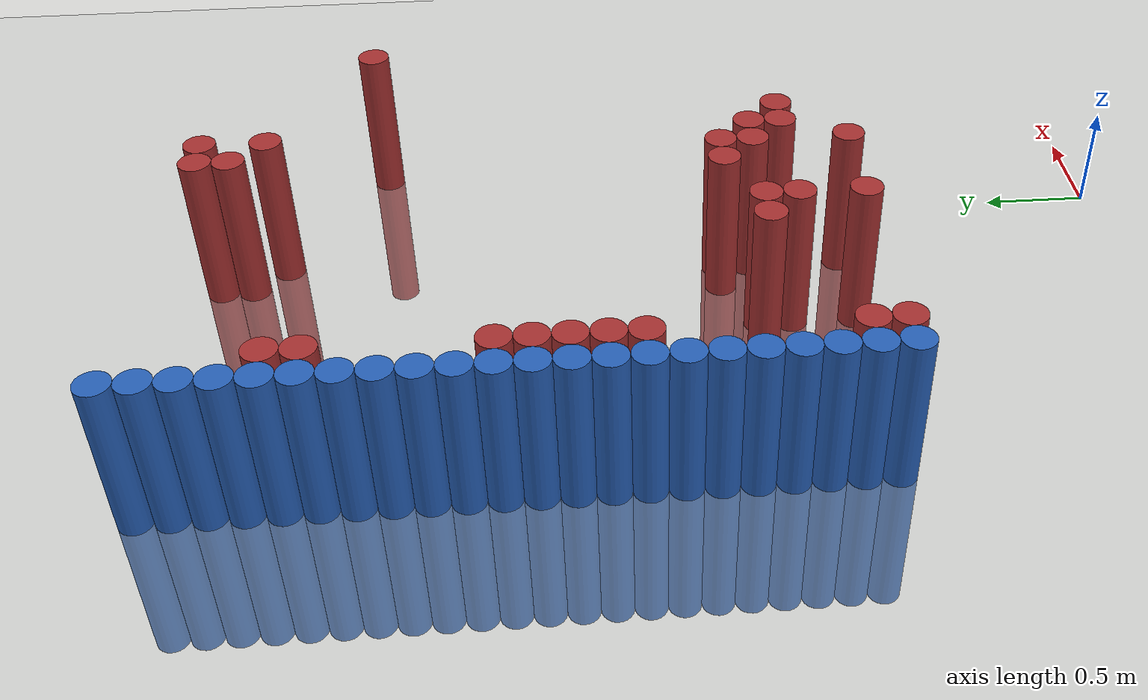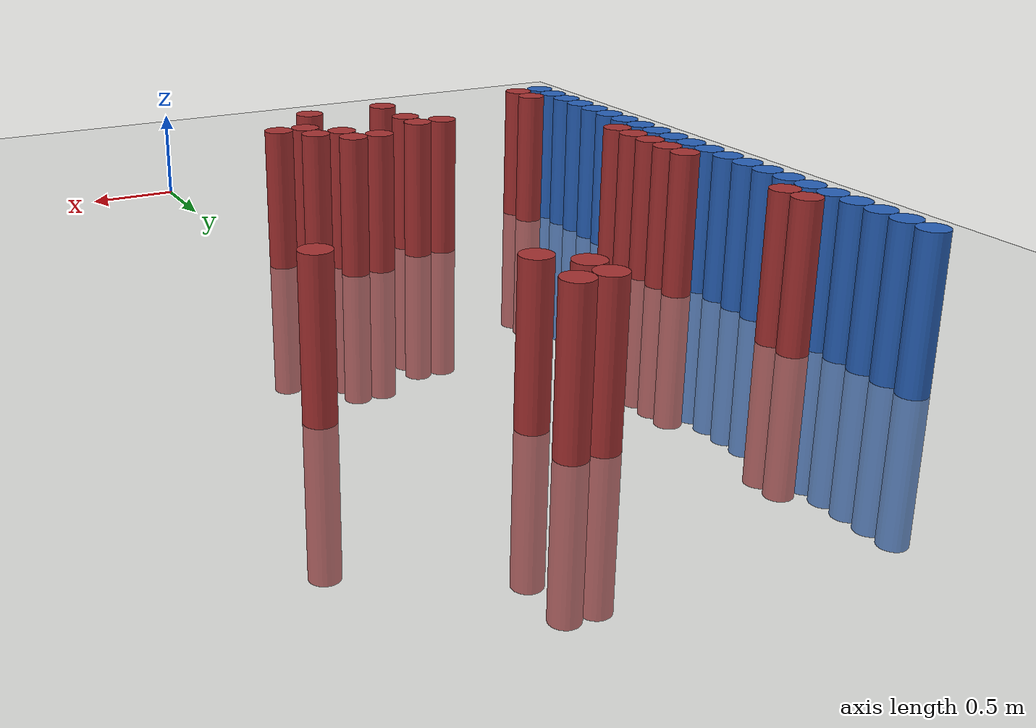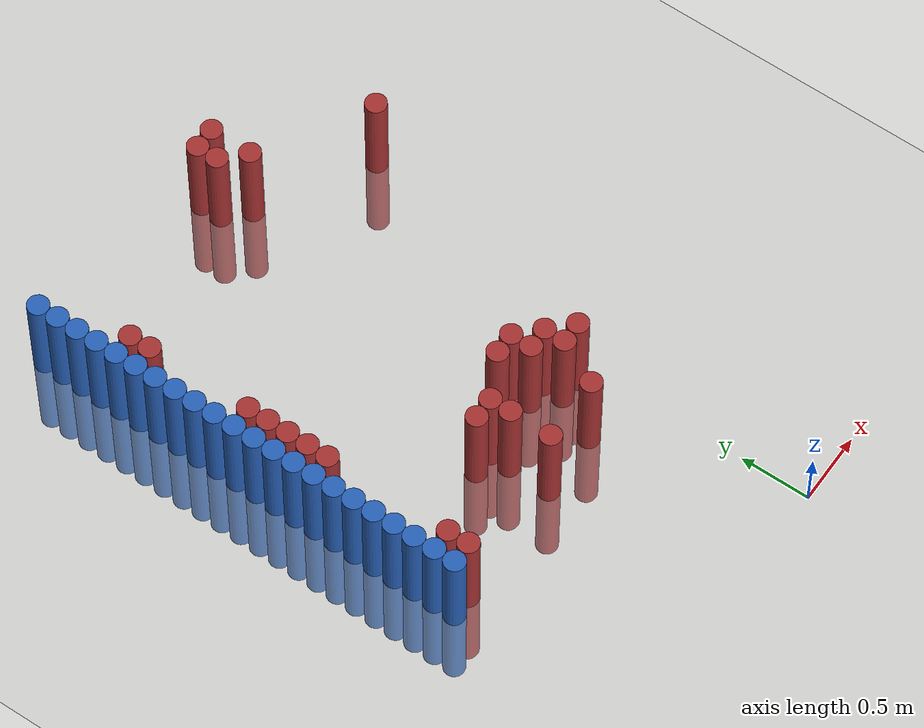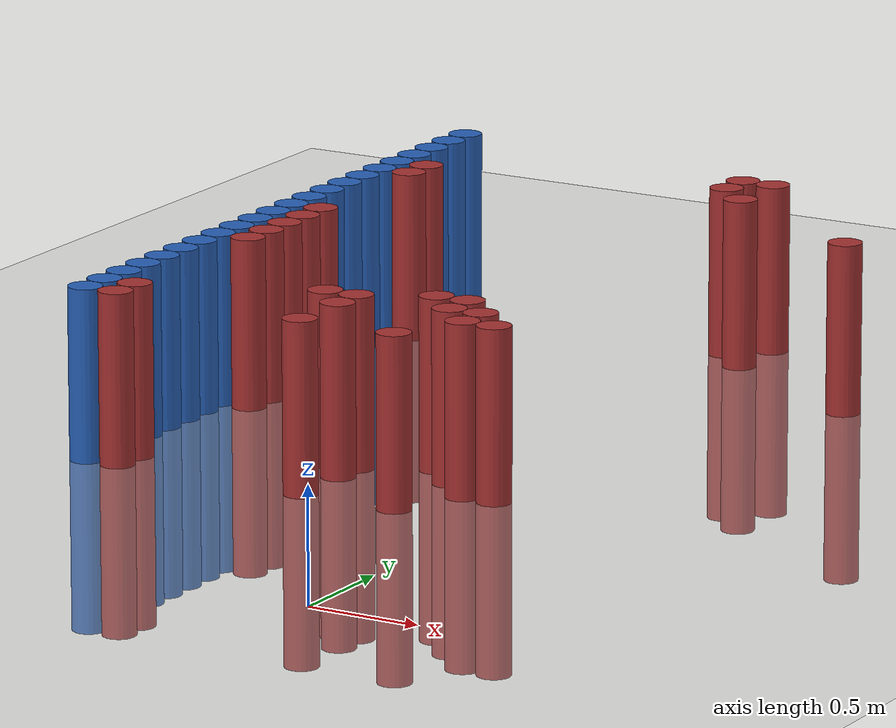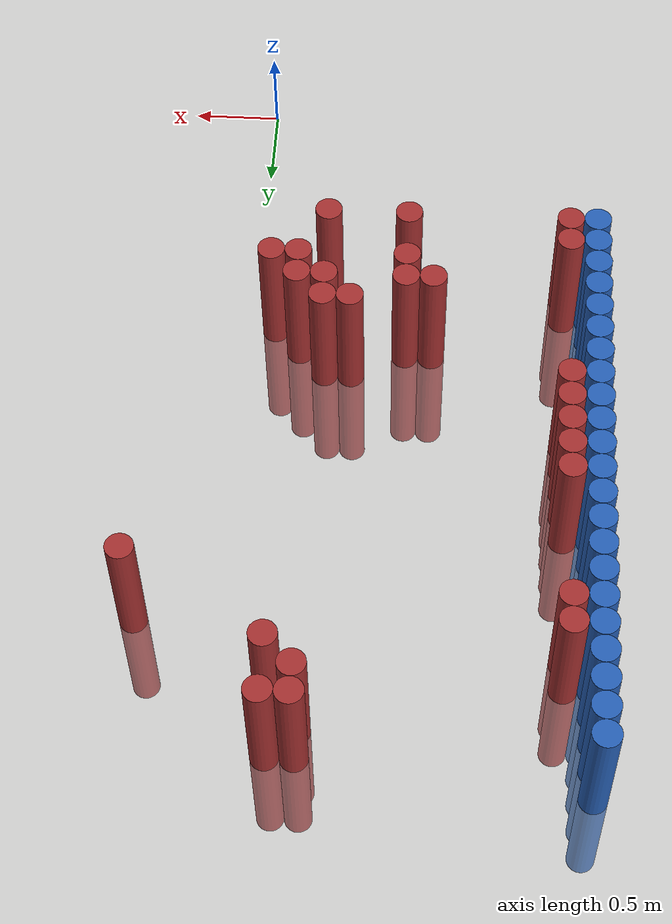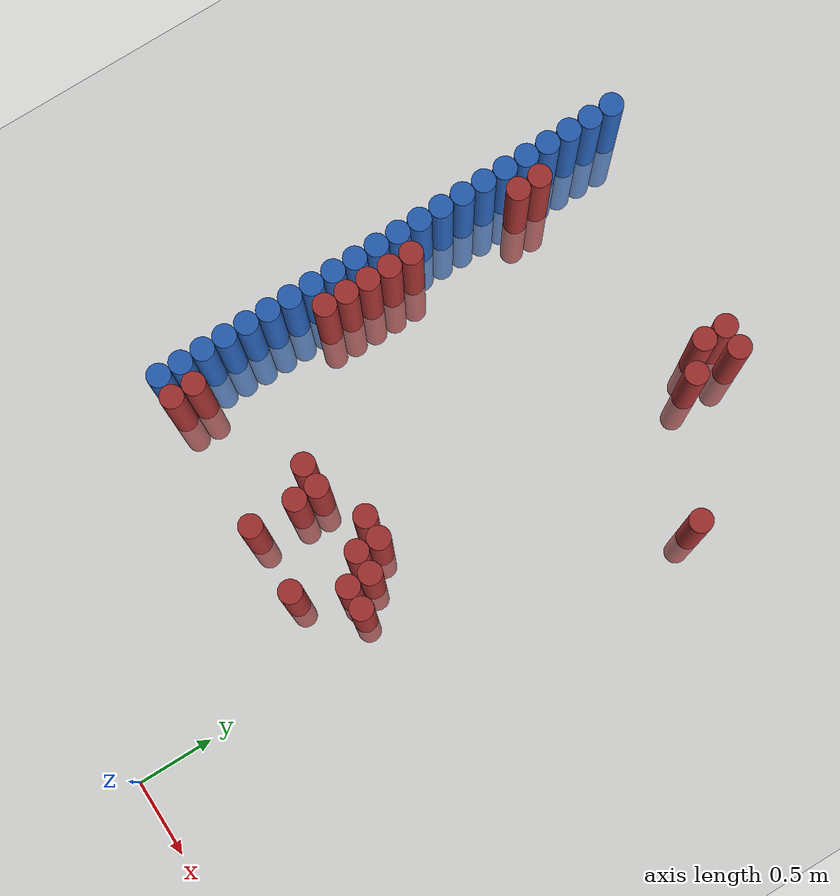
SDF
<sdf version="1.6">
 <world name="default">
  <model name="ground_plane">
   <static>1</static>
   <link name="link">
    <collision name="collision">
     <geometry><plane><normal>0 0 1</normal><size>100 100</size></plane></geometry>
     <surface><friction><ode><mu>100</mu><mu2>50</mu2></ode></friction></surface>
    </collision>
    <visual name="visual">
     <cast_shadows>0</cast_shadows>
     <geometry><plane><normal>0 0 1</normal><size>100 100</size></plane></geometry>
     <material>
      <script><uri>file://media/materials/scripts/gazebo.material</uri><name>Gazebo/Grey</name></script>
     </material>
    </visual>
   </link>
  </model>
  <model name="unit_cylinder_104">
   <static>1</static>
   <pose>-1.925000 1.375000 0.000000 0.000000 0.000000 0.000000</pose>
   <link name="link">
    <inertial>
     <mass>1</mass>
     <inertia><ixx>0.145833</ixx><ixy>0</ixy><ixz>0</ixz><iyy>0.145833</iyy><iyz>0</iyz><izz>0.125</izz></inertia>
    </inertial>
    <collision name="collision">
     <geometry><cylinder><radius>0.075000</radius><length>1.5</length></cylinder></geometry>
    </collision>
    <visual name="visual">
     <geometry><cylinder><radius>0.075000</radius><length>1.5</length></cylinder></geometry>
     <material>
      <ambient>0.152000 0.379000 0.720000 1</ambient>
      <diffuse>0.152000 0.379000 0.720000 1</diffuse>
     </material>
     <material>
      <script><name>Gazebo/Grey</name><uri>file://media/materials/scripts/gazebo.material</uri></script>
     </material>
    </visual>
   </link>
  </model>
  <model name="unit_cylinder_105">
   <static>1</static>
   <pose>-1.925000 1.525000 0.000000 0.000000 0.000000 0.000000</pose>
   <link name="link">
    <inertial>
     <mass>1</mass>
     <inertia><ixx>0.145833</ixx><ixy>0</ixy><ixz>0</ixz><iyy>0.145833</iyy><iyz>0</iyz><izz>0.125</izz></inertia>
    </inertial>
    <collision name="collision">
     <geometry><cylinder><radius>0.075000</radius><length>1.5</length></cylinder></geometry>
    </collision>
    <visual name="visual">
     <geometry><cylinder><radius>0.075000</radius><length>1.5</length></cylinder></geometry>
     <material>
      <ambient>0.152000 0.379000 0.720000 1</ambient>
      <diffuse>0.152000 0.379000 0.720000 1</diffuse>
     </material>
     <material>
      <script><name>Gazebo/Grey</name><uri>file://media/materials/scripts/gazebo.material</uri></script>
     </material>
    </visual>
   </link>
  </model>
  <model name="unit_cylinder_106">
   <static>1</static>
   <pose>-1.925000 1.675000 0.000000 0.000000 0.000000 0.000000</pose>
   <link name="link">
    <inertial>
     <mass>1</mass>
     <inertia><ixx>0.145833</ixx><ixy>0</ixy><ixz>0</ixz><iyy>0.145833</iyy><iyz>0</iyz><izz>0.125</izz></inertia>
    </inertial>
    <collision name="collision">
     <geometry><cylinder><radius>0.075000</radius><length>1.5</length></cylinder></geometry>
    </collision>
    <visual name="visual">
     <geometry><cylinder><radius>0.075000</radius><length>1.5</length></cylinder></geometry>
     <material>
      <ambient>0.152000 0.379000 0.720000 1</ambient>
      <diffuse>0.152000 0.379000 0.720000 1</diffuse>
     </material>
     <material>
      <script><name>Gazebo/Grey</name><uri>file://media/materials/scripts/gazebo.material</uri></script>
     </material>
    </visual>
   </link>
  </model>
  <model name="unit_cylinder_107">
   <static>1</static>
   <pose>-1.925000 1.825000 0.000000 0.000000 0.000000 0.000000</pose>
   <link name="link">
    <inertial>
     <mass>1</mass>
     <inertia><ixx>0.145833</ixx><ixy>0</ixy><ixz>0</ixz><iyy>0.145833</iyy><iyz>0</iyz><izz>0.125</izz></inertia>
    </inertial>
    <collision name="collision">
     <geometry><cylinder><radius>0.075000</radius><length>1.5</length></cylinder></geometry>
    </collision>
    <visual name="visual">
     <geometry><cylinder><radius>0.075000</radius><length>1.5</length></cylinder></geometry>
     <material>
      <ambient>0.152000 0.379000 0.720000 1</ambient>
      <diffuse>0.152000 0.379000 0.720000 1</diffuse>
     </material>
     <material>
      <script><name>Gazebo/Grey</name><uri>file://media/materials/scripts/gazebo.material</uri></script>
     </material>
    </visual>
   </link>
  </model>
  <model name="unit_cylinder_108">
   <static>1</static>
   <pose>-1.925000 1.975000 0.000000 0.000000 0.000000 0.000000</pose>
   <link name="link">
    <inertial>
     <mass>1</mass>
     <inertia><ixx>0.145833</ixx><ixy>0</ixy><ixz>0</ixz><iyy>0.145833</iyy><iyz>0</iyz><izz>0.125</izz></inertia>
    </inertial>
    <collision name="collision">
     <geometry><cylinder><radius>0.075000</radius><length>1.5</length></cylinder></geometry>
    </collision>
    <visual name="visual">
     <geometry><cylinder><radius>0.075000</radius><length>1.5</length></cylinder></geometry>
     <material>
      <ambient>0.152000 0.379000 0.720000 1</ambient>
      <diffuse>0.152000 0.379000 0.720000 1</diffuse>
     </material>
     <material>
      <script><name>Gazebo/Grey</name><uri>file://media/materials/scripts/gazebo.material</uri></script>
     </material>
    </visual>
   </link>
  </model>
  <model name="unit_cylinder_109">
   <static>1</static>
   <pose>-1.925000 2.125000 0.000000 0.000000 0.000000 0.000000</pose>
   <link name="link">
    <inertial>
     <mass>1</mass>
     <inertia><ixx>0.145833</ixx><ixy>0</ixy><ixz>0</ixz><iyy>0.145833</iyy><iyz>0</iyz><izz>0.125</izz></inertia>
    </inertial>
    <collision name="collision">
     <geometry><cylinder><radius>0.075000</radius><length>1.5</length></cylinder></geometry>
    </collision>
    <visual name="visual">
     <geometry><cylinder><radius>0.075000</radius><length>1.5</length></cylinder></geometry>
     <material>
      <ambient>0.152000 0.379000 0.720000 1</ambient>
      <diffuse>0.152000 0.379000 0.720000 1</diffuse>
     </material>
     <material>
      <script><name>Gazebo/Grey</name><uri>file://media/materials/scripts/gazebo.material</uri></script>
     </material>
    </visual>
   </link>
  </model>
  <model name="unit_cylinder_110">
   <static>1</static>
   <pose>-1.925000 2.275000 0.000000 0.000000 0.000000 0.000000</pose>
   <link name="link">
    <inertial>
     <mass>1</mass>
     <inertia><ixx>0.145833</ixx><ixy>0</ixy><ixz>0</ixz><iyy>0.145833</iyy><iyz>0</iyz><izz>0.125</izz></inertia>
    </inertial>
    <collision name="collision">
     <geometry><cylinder><radius>0.075000</radius><length>1.5</length></cylinder></geometry>
    </collision>
    <visual name="visual">
     <geometry><cylinder><radius>0.075000</radius><length>1.5</length></cylinder></geometry>
     <material>
      <ambient>0.152000 0.379000 0.720000 1</ambient>
      <diffuse>0.152000 0.379000 0.720000 1</diffuse>
     </material>
     <material>
      <script><name>Gazebo/Grey</name><uri>file://media/materials/scripts/gazebo.material</uri></script>
     </material>
    </visual>
   </link>
  </model>
  <model name="unit_cylinder_111">
   <static>1</static>
   <pose>-1.925000 2.425000 0.000000 0.000000 0.000000 0.000000</pose>
   <link name="link">
    <inertial>
     <mass>1</mass>
     <inertia><ixx>0.145833</ixx><ixy>0</ixy><ixz>0</ixz><iyy>0.145833</iyy><iyz>0</iyz><izz>0.125</izz></inertia>
    </inertial>
    <collision name="collision">
     <geometry><cylinder><radius>0.075000</radius><length>1.5</length></cylinder></geometry>
    </collision>
    <visual name="visual">
     <geometry><cylinder><radius>0.075000</radius><length>1.5</length></cylinder></geometry>
     <material>
      <ambient>0.152000 0.379000 0.720000 1</ambient>
      <diffuse>0.152000 0.379000 0.720000 1</diffuse>
     </material>
     <material>
      <script><name>Gazebo/Grey</name><uri>file://media/materials/scripts/gazebo.material</uri></script>
     </material>
    </visual>
   </link>
  </model>
  <model name="unit_cylinder_112">
   <static>1</static>
   <pose>-1.925000 2.575000 0.000000 0.000000 0.000000 0.000000</pose>
   <link name="link">
    <inertial>
     <mass>1</mass>
     <inertia><ixx>0.145833</ixx><ixy>0</ixy><ixz>0</ixz><iyy>0.145833</iyy><iyz>0</iyz><izz>0.125</izz></inertia>
    </inertial>
    <collision name="collision">
     <geometry><cylinder><radius>0.075000</radius><length>1.5</length></cylinder></geometry>
    </collision>
    <visual name="visual">
     <geometry><cylinder><radius>0.075000</radius><length>1.5</length></cylinder></geometry>
     <material>
      <ambient>0.152000 0.379000 0.720000 1</ambient>
      <diffuse>0.152000 0.379000 0.720000 1</diffuse>
     </material>
     <material>
      <script><name>Gazebo/Grey</name><uri>file://media/materials/scripts/gazebo.material</uri></script>
     </material>
    </visual>
   </link>
  </model>
  <model name="unit_cylinder_113">
   <static>1</static>
   <pose>-1.925000 2.725000 0.000000 0.000000 0.000000 0.000000</pose>
   <link name="link">
    <inertial>
     <mass>1</mass>
     <inertia><ixx>0.145833</ixx><ixy>0</ixy><ixz>0</ixz><iyy>0.145833</iyy><iyz>0</iyz><izz>0.125</izz></inertia>
    </inertial>
    <collision name="collision">
     <geometry><cylinder><radius>0.075000</radius><length>1.5</length></cylinder></geometry>
    </collision>
    <visual name="visual">
     <geometry><cylinder><radius>0.075000</radius><length>1.5</length></cylinder></geometry>
     <material>
      <ambient>0.152000 0.379000 0.720000 1</ambient>
      <diffuse>0.152000 0.379000 0.720000 1</diffuse>
     </material>
     <material>
      <script><name>Gazebo/Grey</name><uri>file://media/materials/scripts/gazebo.material</uri></script>
     </material>
    </visual>
   </link>
  </model>
  <model name="unit_cylinder_114">
   <static>1</static>
   <pose>-1.925000 2.875000 0.000000 0.000000 0.000000 0.000000</pose>
   <link name="link">
    <inertial>
     <mass>1</mass>
     <inertia><ixx>0.145833</ixx><ixy>0</ixy><ixz>0</ixz><iyy>0.145833</iyy><iyz>0</iyz><izz>0.125</izz></inertia>
    </inertial>
    <collision name="collision">
     <geometry><cylinder><radius>0.075000</radius><length>1.5</length></cylinder></geometry>
    </collision>
    <visual name="visual">
     <geometry><cylinder><radius>0.075000</radius><length>1.5</length></cylinder></geometry>
     <material>
      <ambient>0.152000 0.379000 0.720000 1</ambient>
      <diffuse>0.152000 0.379000 0.720000 1</diffuse>
     </material>
     <material>
      <script><name>Gazebo/Grey</name><uri>file://media/materials/scripts/gazebo.material</uri></script>
     </material>
    </visual>
   </link>
  </model>
  <model name="unit_cylinder_115">
   <static>1</static>
   <pose>-1.925000 3.025000 0.000000 0.000000 0.000000 0.000000</pose>
   <link name="link">
    <inertial>
     <mass>1</mass>
     <inertia><ixx>0.145833</ixx><ixy>0</ixy><ixz>0</ixz><iyy>0.145833</iyy><iyz>0</iyz><izz>0.125</izz></inertia>
    </inertial>
    <collision name="collision">
     <geometry><cylinder><radius>0.075000</radius><length>1.5</length></cylinder></geometry>
    </collision>
    <visual name="visual">
     <geometry><cylinder><radius>0.075000</radius><length>1.5</length></cylinder></geometry>
     <material>
      <ambient>0.152000 0.379000 0.720000 1</ambient>
      <diffuse>0.152000 0.379000 0.720000 1</diffuse>
     </material>
     <material>
      <script><name>Gazebo/Grey</name><uri>file://media/materials/scripts/gazebo.material</uri></script>
     </material>
    </visual>
   </link>
  </model>
  <model name="unit_cylinder_116">
   <static>1</static>
   <pose>-1.925000 3.175000 0.000000 0.000000 0.000000 0.000000</pose>
   <link name="link">
    <inertial>
     <mass>1</mass>
     <inertia><ixx>0.145833</ixx><ixy>0</ixy><ixz>0</ixz><iyy>0.145833</iyy><iyz>0</iyz><izz>0.125</izz></inertia>
    </inertial>
    <collision name="collision">
     <geometry><cylinder><radius>0.075000</radius><length>1.5</length></cylinder></geometry>
    </collision>
    <visual name="visual">
     <geometry><cylinder><radius>0.075000</radius><length>1.5</length></cylinder></geometry>
     <material>
      <ambient>0.152000 0.379000 0.720000 1</ambient>
      <diffuse>0.152000 0.379000 0.720000 1</diffuse>
     </material>
     <material>
      <script><name>Gazebo/Grey</name><uri>file://media/materials/scripts/gazebo.material</uri></script>
     </material>
    </visual>
   </link>
  </model>
  <model name="unit_cylinder_117">
   <static>1</static>
   <pose>-1.925000 3.325000 0.000000 0.000000 0.000000 0.000000</pose>
   <link name="link">
    <inertial>
     <mass>1</mass>
     <inertia><ixx>0.145833</ixx><ixy>0</ixy><ixz>0</ixz><iyy>0.145833</iyy><iyz>0</iyz><izz>0.125</izz></inertia>
    </inertial>
    <collision name="collision">
     <geometry><cylinder><radius>0.075000</radius><length>1.5</length></cylinder></geometry>
    </collision>
    <visual name="visual">
     <geometry><cylinder><radius>0.075000</radius><length>1.5</length></cylinder></geometry>
     <material>
      <ambient>0.152000 0.379000 0.720000 1</ambient>
      <diffuse>0.152000 0.379000 0.720000 1</diffuse>
     </material>
     <material>
      <script><name>Gazebo/Grey</name><uri>file://media/materials/scripts/gazebo.material</uri></script>
     </material>
    </visual>
   </link>
  </model>
  <model name="unit_cylinder_118">
   <static>1</static>
   <pose>-1.925000 3.475000 0.000000 0.000000 0.000000 0.000000</pose>
   <link name="link">
    <inertial>
     <mass>1</mass>
     <inertia><ixx>0.145833</ixx><ixy>0</ixy><ixz>0</ixz><iyy>0.145833</iyy><iyz>0</iyz><izz>0.125</izz></inertia>
    </inertial>
    <collision name="collision">
     <geometry><cylinder><radius>0.075000</radius><length>1.5</length></cylinder></geometry>
    </collision>
    <visual name="visual">
     <geometry><cylinder><radius>0.075000</radius><length>1.5</length></cylinder></geometry>
     <material>
      <ambient>0.152000 0.379000 0.720000 1</ambient>
      <diffuse>0.152000 0.379000 0.720000 1</diffuse>
     </material>
     <material>
      <script><name>Gazebo/Grey</name><uri>file://media/materials/scripts/gazebo.material</uri></script>
     </material>
    </visual>
   </link>
  </model>
  <model name="unit_cylinder_119">
   <static>1</static>
   <pose>-1.925000 3.625000 0.000000 0.000000 0.000000 0.000000</pose>
   <link name="link">
    <inertial>
     <mass>1</mass>
     <inertia><ixx>0.145833</ixx><ixy>0</ixy><ixz>0</ixz><iyy>0.145833</iyy><iyz>0</iyz><izz>0.125</izz></inertia>
    </inertial>
    <collision name="collision">
     <geometry><cylinder><radius>0.075000</radius><length>1.5</length></cylinder></geometry>
    </collision>
    <visual name="visual">
     <geometry><cylinder><radius>0.075000</radius><length>1.5</length></cylinder></geometry>
     <material>
      <ambient>0.152000 0.379000 0.720000 1</ambient>
      <diffuse>0.152000 0.379000 0.720000 1</diffuse>
     </material>
     <material>
      <script><name>Gazebo/Grey</name><uri>file://media/materials/scripts/gazebo.material</uri></script>
     </material>
    </visual>
   </link>
  </model>
  <model name="unit_cylinder_120">
   <static>1</static>
   <pose>-1.925000 3.775000 0.000000 0.000000 0.000000 0.000000</pose>
   <link name="link">
    <inertial>
     <mass>1</mass>
     <inertia><ixx>0.145833</ixx><ixy>0</ixy><ixz>0</ixz><iyy>0.145833</iyy><iyz>0</iyz><izz>0.125</izz></inertia>
    </inertial>
    <collision name="collision">
     <geometry><cylinder><radius>0.075000</radius><length>1.5</length></cylinder></geometry>
    </collision>
    <visual name="visual">
     <geometry><cylinder><radius>0.075000</radius><length>1.5</length></cylinder></geometry>
     <material>
      <ambient>0.152000 0.379000 0.720000 1</ambient>
      <diffuse>0.152000 0.379000 0.720000 1</diffuse>
     </material>
     <material>
      <script><name>Gazebo/Grey</name><uri>file://media/materials/scripts/gazebo.material</uri></script>
     </material>
    </visual>
   </link>
  </model>
  <model name="unit_cylinder_121">
   <static>1</static>
   <pose>-1.925000 3.925000 0.000000 0.000000 0.000000 0.000000</pose>
   <link name="link">
    <inertial>
     <mass>1</mass>
     <inertia><ixx>0.145833</ixx><ixy>0</ixy><ixz>0</ixz><iyy>0.145833</iyy><iyz>0</iyz><izz>0.125</izz></inertia>
    </inertial>
    <collision name="collision">
     <geometry><cylinder><radius>0.075000</radius><length>1.5</length></cylinder></geometry>
    </collision>
    <visual name="visual">
     <geometry><cylinder><radius>0.075000</radius><length>1.5</length></cylinder></geometry>
     <material>
      <ambient>0.152000 0.379000 0.720000 1</ambient>
      <diffuse>0.152000 0.379000 0.720000 1</diffuse>
     </material>
     <material>
      <script><name>Gazebo/Grey</name><uri>file://media/materials/scripts/gazebo.material</uri></script>
     </material>
    </visual>
   </link>
  </model>
  <model name="unit_cylinder_122">
   <static>1</static>
   <pose>-1.925000 4.075000 0.000000 0.000000 0.000000 0.000000</pose>
   <link name="link">
    <inertial>
     <mass>1</mass>
     <inertia><ixx>0.145833</ixx><ixy>0</ixy><ixz>0</ixz><iyy>0.145833</iyy><iyz>0</iyz><izz>0.125</izz></inertia>
    </inertial>
    <collision name="collision">
     <geometry><cylinder><radius>0.075000</radius><length>1.5</length></cylinder></geometry>
    </collision>
    <visual name="visual">
     <geometry><cylinder><radius>0.075000</radius><length>1.5</length></cylinder></geometry>
     <material>
      <ambient>0.152000 0.379000 0.720000 1</ambient>
      <diffuse>0.152000 0.379000 0.720000 1</diffuse>
     </material>
     <material>
      <script><name>Gazebo/Grey</name><uri>file://media/materials/scripts/gazebo.material</uri></script>
     </material>
    </visual>
   </link>
  </model>
  <model name="unit_cylinder_123">
   <static>1</static>
   <pose>-1.925000 4.225000 0.000000 0.000000 0.000000 0.000000</pose>
   <link name="link">
    <inertial>
     <mass>1</mass>
     <inertia><ixx>0.145833</ixx><ixy>0</ixy><ixz>0</ixz><iyy>0.145833</iyy><iyz>0</iyz><izz>0.125</izz></inertia>
    </inertial>
    <collision name="collision">
     <geometry><cylinder><radius>0.075000</radius><length>1.5</length></cylinder></geometry>
    </collision>
    <visual name="visual">
     <geometry><cylinder><radius>0.075000</radius><length>1.5</length></cylinder></geometry>
     <material>
      <ambient>0.152000 0.379000 0.720000 1</ambient>
      <diffuse>0.152000 0.379000 0.720000 1</diffuse>
     </material>
     <material>
      <script><name>Gazebo/Grey</name><uri>file://media/materials/scripts/gazebo.material</uri></script>
     </material>
    </visual>
   </link>
  </model>
  <model name="unit_cylinder_124">
   <static>1</static>
   <pose>-1.925000 4.375000 0.000000 0.000000 0.000000 0.000000</pose>
   <link name="link">
    <inertial>
     <mass>1</mass>
     <inertia><ixx>0.145833</ixx><ixy>0</ixy><ixz>0</ixz><iyy>0.145833</iyy><iyz>0</iyz><izz>0.125</izz></inertia>
    </inertial>
    <collision name="collision">
     <geometry><cylinder><radius>0.075000</radius><length>1.5</length></cylinder></geometry>
    </collision>
    <visual name="visual">
     <geometry><cylinder><radius>0.075000</radius><length>1.5</length></cylinder></geometry>
     <material>
      <ambient>0.152000 0.379000 0.720000 1</ambient>
      <diffuse>0.152000 0.379000 0.720000 1</diffuse>
     </material>
     <material>
      <script><name>Gazebo/Grey</name><uri>file://media/materials/scripts/gazebo.material</uri></script>
     </material>
    </visual>
   </link>
  </model>
  <model name="unit_cylinder_125">
   <static>1</static>
   <pose>-1.925000 4.525000 0.000000 0.000000 0.000000 0.000000</pose>
   <link name="link">
    <inertial>
     <mass>1</mass>
     <inertia><ixx>0.145833</ixx><ixy>0</ixy><ixz>0</ixz><iyy>0.145833</iyy><iyz>0</iyz><izz>0.125</izz></inertia>
    </inertial>
    <collision name="collision">
     <geometry><cylinder><radius>0.075000</radius><length>1.5</length></cylinder></geometry>
    </collision>
    <visual name="visual">
     <geometry><cylinder><radius>0.075000</radius><length>1.5</length></cylinder></geometry>
     <material>
      <ambient>0.152000 0.379000 0.720000 1</ambient>
      <diffuse>0.152000 0.379000 0.720000 1</diffuse>
     </material>
     <material>
      <script><name>Gazebo/Grey</name><uri>file://media/materials/scripts/gazebo.material</uri></script>
     </material>
    </visual>
   </link>
  </model>
  <model name="unit_cylinder_130">
   <static>1</static>
   <pose>-1.775000 1.375000 0.000000 0.000000 0.000000 0.000000</pose>
   <link name="link">
    <inertial>
     <mass>1</mass>
     <inertia><ixx>0.145833</ixx><ixy>0</ixy><ixz>0</ixz><iyy>0.145833</iyy><iyz>0</iyz><izz>0.125</izz></inertia>
    </inertial>
    <collision name="collision">
     <geometry><cylinder><radius>0.075000</radius><length>1.5</length></cylinder></geometry>
    </collision>
    <visual name="visual">
     <geometry><cylinder><radius>0.075000</radius><length>1.5</length></cylinder></geometry>
     <material>
      <ambient>0.648000 0.192000 0.192000 1</ambient>
      <diffuse>0.648000 0.192000 0.192000 1</diffuse>
     </material>
     <material>
      <script><name>Gazebo/Grey</name><uri>file://media/materials/scripts/gazebo.material</uri></script>
     </material>
    </visual>
   </link>
  </model>
  <model name="unit_cylinder_131">
   <static>1</static>
   <pose>-1.775000 1.525000 0.000000 0.000000 0.000000 0.000000</pose>
   <link name="link">
    <inertial>
     <mass>1</mass>
     <inertia><ixx>0.145833</ixx><ixy>0</ixy><ixz>0</ixz><iyy>0.145833</iyy><iyz>0</iyz><izz>0.125</izz></inertia>
    </inertial>
    <collision name="collision">
     <geometry><cylinder><radius>0.075000</radius><length>1.5</length></cylinder></geometry>
    </collision>
    <visual name="visual">
     <geometry><cylinder><radius>0.075000</radius><length>1.5</length></cylinder></geometry>
     <material>
      <ambient>0.648000 0.192000 0.192000 1</ambient>
      <diffuse>0.648000 0.192000 0.192000 1</diffuse>
     </material>
     <material>
      <script><name>Gazebo/Grey</name><uri>file://media/materials/scripts/gazebo.material</uri></script>
     </material>
    </visual>
   </link>
  </model>
  <model name="unit_cylinder_132">
   <static>1</static>
   <pose>-1.775000 2.425000 0.000000 0.000000 0.000000 0.000000</pose>
   <link name="link">
    <inertial>
     <mass>1</mass>
     <inertia><ixx>0.145833</ixx><ixy>0</ixy><ixz>0</ixz><iyy>0.145833</iyy><iyz>0</iyz><izz>0.125</izz></inertia>
    </inertial>
    <collision name="collision">
     <geometry><cylinder><radius>0.075000</radius><length>1.5</length></cylinder></geometry>
    </collision>
    <visual name="visual">
     <geometry><cylinder><radius>0.075000</radius><length>1.5</length></cylinder></geometry>
     <material>
      <ambient>0.648000 0.192000 0.192000 1</ambient>
      <diffuse>0.648000 0.192000 0.192000 1</diffuse>
     </material>
     <material>
      <script><name>Gazebo/Grey</name><uri>file://media/materials/scripts/gazebo.material</uri></script>
     </material>
    </visual>
   </link>
  </model>
  <model name="unit_cylinder_133">
   <static>1</static>
   <pose>-1.775000 2.575000 0.000000 0.000000 0.000000 0.000000</pose>
   <link name="link">
    <inertial>
     <mass>1</mass>
     <inertia><ixx>0.145833</ixx><ixy>0</ixy><ixz>0</ixz><iyy>0.145833</iyy><iyz>0</iyz><izz>0.125</izz></inertia>
    </inertial>
    <collision name="collision">
     <geometry><cylinder><radius>0.075000</radius><length>1.5</length></cylinder></geometry>
    </collision>
    <visual name="visual">
     <geometry><cylinder><radius>0.075000</radius><length>1.5</length></cylinder></geometry>
     <material>
      <ambient>0.648000 0.192000 0.192000 1</ambient>
      <diffuse>0.648000 0.192000 0.192000 1</diffuse>
     </material>
     <material>
      <script><name>Gazebo/Grey</name><uri>file://media/materials/scripts/gazebo.material</uri></script>
     </material>
    </visual>
   </link>
  </model>
  <model name="unit_cylinder_134">
   <static>1</static>
   <pose>-1.775000 2.725000 0.000000 0.000000 0.000000 0.000000</pose>
   <link name="link">
    <inertial>
     <mass>1</mass>
     <inertia><ixx>0.145833</ixx><ixy>0</ixy><ixz>0</ixz><iyy>0.145833</iyy><iyz>0</iyz><izz>0.125</izz></inertia>
    </inertial>
    <collision name="collision">
     <geometry><cylinder><radius>0.075000</radius><length>1.5</length></cylinder></geometry>
    </collision>
    <visual name="visual">
     <geometry><cylinder><radius>0.075000</radius><length>1.5</length></cylinder></geometry>
     <material>
      <ambient>0.648000 0.192000 0.192000 1</ambient>
      <diffuse>0.648000 0.192000 0.192000 1</diffuse>
     </material>
     <material>
      <script><name>Gazebo/Grey</name><uri>file://media/materials/scripts/gazebo.material</uri></script>
     </material>
    </visual>
   </link>
  </model>
  <model name="unit_cylinder_135">
   <static>1</static>
   <pose>-1.775000 2.875000 0.000000 0.000000 0.000000 0.000000</pose>
   <link name="link">
    <inertial>
     <mass>1</mass>
     <inertia><ixx>0.145833</ixx><ixy>0</ixy><ixz>0</ixz><iyy>0.145833</iyy><iyz>0</iyz><izz>0.125</izz></inertia>
    </inertial>
    <collision name="collision">
     <geometry><cylinder><radius>0.075000</radius><length>1.5</length></cylinder></geometry>
    </collision>
    <visual name="visual">
     <geometry><cylinder><radius>0.075000</radius><length>1.5</length></cylinder></geometry>
     <material>
      <ambient>0.648000 0.192000 0.192000 1</ambient>
      <diffuse>0.648000 0.192000 0.192000 1</diffuse>
     </material>
     <material>
      <script><name>Gazebo/Grey</name><uri>file://media/materials/scripts/gazebo.material</uri></script>
     </material>
    </visual>
   </link>
  </model>
  <model name="unit_cylinder_136">
   <static>1</static>
   <pose>-1.775000 3.025000 0.000000 0.000000 0.000000 0.000000</pose>
   <link name="link">
    <inertial>
     <mass>1</mass>
     <inertia><ixx>0.145833</ixx><ixy>0</ixy><ixz>0</ixz><iyy>0.145833</iyy><iyz>0</iyz><izz>0.125</izz></inertia>
    </inertial>
    <collision name="collision">
     <geometry><cylinder><radius>0.075000</radius><length>1.5</length></cylinder></geometry>
    </collision>
    <visual name="visual">
     <geometry><cylinder><radius>0.075000</radius><length>1.5</length></cylinder></geometry>
     <material>
      <ambient>0.648000 0.192000 0.192000 1</ambient>
      <diffuse>0.648000 0.192000 0.192000 1</diffuse>
     </material>
     <material>
      <script><name>Gazebo/Grey</name><uri>file://media/materials/scripts/gazebo.material</uri></script>
     </material>
    </visual>
   </link>
  </model>
  <model name="unit_cylinder_137">
   <static>1</static>
   <pose>-1.775000 3.775000 0.000000 0.000000 0.000000 0.000000</pose>
   <link name="link">
    <inertial>
     <mass>1</mass>
     <inertia><ixx>0.145833</ixx><ixy>0</ixy><ixz>0</ixz><iyy>0.145833</iyy><iyz>0</iyz><izz>0.125</izz></inertia>
    </inertial>
    <collision name="collision">
     <geometry><cylinder><radius>0.075000</radius><length>1.5</length></cylinder></geometry>
    </collision>
    <visual name="visual">
     <geometry><cylinder><radius>0.075000</radius><length>1.5</length></cylinder></geometry>
     <material>
      <ambient>0.648000 0.192000 0.192000 1</ambient>
      <diffuse>0.648000 0.192000 0.192000 1</diffuse>
     </material>
     <material>
      <script><name>Gazebo/Grey</name><uri>file://media/materials/scripts/gazebo.material</uri></script>
     </material>
    </visual>
   </link>
  </model>
  <model name="unit_cylinder_138">
   <static>1</static>
   <pose>-1.775000 3.925000 0.000000 0.000000 0.000000 0.000000</pose>
   <link name="link">
    <inertial>
     <mass>1</mass>
     <inertia><ixx>0.145833</ixx><ixy>0</ixy><ixz>0</ixz><iyy>0.145833</iyy><iyz>0</iyz><izz>0.125</izz></inertia>
    </inertial>
    <collision name="collision">
     <geometry><cylinder><radius>0.075000</radius><length>1.5</length></cylinder></geometry>
    </collision>
    <visual name="visual">
     <geometry><cylinder><radius>0.075000</radius><length>1.5</length></cylinder></geometry>
     <material>
      <ambient>0.648000 0.192000 0.192000 1</ambient>
      <diffuse>0.648000 0.192000 0.192000 1</diffuse>
     </material>
     <material>
      <script><name>Gazebo/Grey</name><uri>file://media/materials/scripts/gazebo.material</uri></script>
     </material>
    </visual>
   </link>
  </model>
  <model name="unit_cylinder_146">
   <static>1</static>
   <pose>-1.025000 1.825000 0.000000 0.000000 0.000000 0.000000</pose>
   <link name="link">
    <inertial>
     <mass>1</mass>
     <inertia><ixx>0.145833</ixx><ixy>0</ixy><ixz>0</ixz><iyy>0.145833</iyy><iyz>0</iyz><izz>0.125</izz></inertia>
    </inertial>
    <collision name="collision">
     <geometry><cylinder><radius>0.075000</radius><length>1.5</length></cylinder></geometry>
    </collision>
    <visual name="visual">
     <geometry><cylinder><radius>0.075000</radius><length>1.5</length></cylinder></geometry>
     <material>
      <ambient>0.648000 0.192000 0.192000 1</ambient>
      <diffuse>0.648000 0.192000 0.192000 1</diffuse>
     </material>
     <material>
      <script><name>Gazebo/Grey</name><uri>file://media/materials/scripts/gazebo.material</uri></script>
     </material>
    </visual>
   </link>
  </model>
  <model name="unit_cylinder_155">
   <static>1</static>
   <pose>-0.875000 1.375000 0.000000 0.000000 0.000000 0.000000</pose>
   <link name="link">
    <inertial>
     <mass>1</mass>
     <inertia><ixx>0.145833</ixx><ixy>0</ixy><ixz>0</ixz><iyy>0.145833</iyy><iyz>0</iyz><izz>0.125</izz></inertia>
    </inertial>
    <collision name="collision">
     <geometry><cylinder><radius>0.075000</radius><length>1.5</length></cylinder></geometry>
    </collision>
    <visual name="visual">
     <geometry><cylinder><radius>0.075000</radius><length>1.5</length></cylinder></geometry>
     <material>
      <ambient>0.648000 0.192000 0.192000 1</ambient>
      <diffuse>0.648000 0.192000 0.192000 1</diffuse>
     </material>
     <material>
      <script><name>Gazebo/Grey</name><uri>file://media/materials/scripts/gazebo.material</uri></script>
     </material>
    </visual>
   </link>
  </model>
  <model name="unit_cylinder_156">
   <static>1</static>
   <pose>-0.875000 1.675000 0.000000 0.000000 0.000000 0.000000</pose>
   <link name="link">
    <inertial>
     <mass>1</mass>
     <inertia><ixx>0.145833</ixx><ixy>0</ixy><ixz>0</ixz><iyy>0.145833</iyy><iyz>0</iyz><izz>0.125</izz></inertia>
    </inertial>
    <collision name="collision">
     <geometry><cylinder><radius>0.075000</radius><length>1.5</length></cylinder></geometry>
    </collision>
    <visual name="visual">
     <geometry><cylinder><radius>0.075000</radius><length>1.5</length></cylinder></geometry>
     <material>
      <ambient>0.648000 0.192000 0.192000 1</ambient>
      <diffuse>0.648000 0.192000 0.192000 1</diffuse>
     </material>
     <material>
      <script><name>Gazebo/Grey</name><uri>file://media/materials/scripts/gazebo.material</uri></script>
     </material>
    </visual>
   </link>
  </model>
  <model name="unit_cylinder_157">
   <static>1</static>
   <pose>-0.875000 1.825000 0.000000 0.000000 0.000000 0.000000</pose>
   <link name="link">
    <inertial>
     <mass>1</mass>
     <inertia><ixx>0.145833</ixx><ixy>0</ixy><ixz>0</ixz><iyy>0.145833</iyy><iyz>0</iyz><izz>0.125</izz></inertia>
    </inertial>
    <collision name="collision">
     <geometry><cylinder><radius>0.075000</radius><length>1.5</length></cylinder></geometry>
    </collision>
    <visual name="visual">
     <geometry><cylinder><radius>0.075000</radius><length>1.5</length></cylinder></geometry>
     <material>
      <ambient>0.648000 0.192000 0.192000 1</ambient>
      <diffuse>0.648000 0.192000 0.192000 1</diffuse>
     </material>
     <material>
      <script><name>Gazebo/Grey</name><uri>file://media/materials/scripts/gazebo.material</uri></script>
     </material>
    </visual>
   </link>
  </model>
  <model name="unit_cylinder_162">
   <static>1</static>
   <pose>-0.575000 1.975000 0.000000 0.000000 0.000000 0.000000</pose>
   <link name="link">
    <inertial>
     <mass>1</mass>
     <inertia><ixx>0.145833</ixx><ixy>0</ixy><ixz>0</ixz><iyy>0.145833</iyy><iyz>0</iyz><izz>0.125</izz></inertia>
    </inertial>
    <collision name="collision">
     <geometry><cylinder><radius>0.075000</radius><length>1.5</length></cylinder></geometry>
    </collision>
    <visual name="visual">
     <geometry><cylinder><radius>0.075000</radius><length>1.5</length></cylinder></geometry>
     <material>
      <ambient>0.648000 0.192000 0.192000 1</ambient>
      <diffuse>0.648000 0.192000 0.192000 1</diffuse>
     </material>
     <material>
      <script><name>Gazebo/Grey</name><uri>file://media/materials/scripts/gazebo.material</uri></script>
     </material>
    </visual>
   </link>
  </model>
  <model name="unit_cylinder_164">
   <static>1</static>
   <pose>-0.425000 1.375000 0.000000 0.000000 0.000000 0.000000</pose>
   <link name="link">
    <inertial>
     <mass>1</mass>
     <inertia><ixx>0.145833</ixx><ixy>0</ixy><ixz>0</ixz><iyy>0.145833</iyy><iyz>0</iyz><izz>0.125</izz></inertia>
    </inertial>
    <collision name="collision">
     <geometry><cylinder><radius>0.075000</radius><length>1.5</length></cylinder></geometry>
    </collision>
    <visual name="visual">
     <geometry><cylinder><radius>0.075000</radius><length>1.5</length></cylinder></geometry>
     <material>
      <ambient>0.648000 0.192000 0.192000 1</ambient>
      <diffuse>0.648000 0.192000 0.192000 1</diffuse>
     </material>
     <material>
      <script><name>Gazebo/Grey</name><uri>file://media/materials/scripts/gazebo.material</uri></script>
     </material>
    </visual>
   </link>
  </model>
  <model name="unit_cylinder_165">
   <static>1</static>
   <pose>-0.425000 1.825000 0.000000 0.000000 0.000000 0.000000</pose>
   <link name="link">
    <inertial>
     <mass>1</mass>
     <inertia><ixx>0.145833</ixx><ixy>0</ixy><ixz>0</ixz><iyy>0.145833</iyy><iyz>0</iyz><izz>0.125</izz></inertia>
    </inertial>
    <collision name="collision">
     <geometry><cylinder><radius>0.075000</radius><length>1.5</length></cylinder></geometry>
    </collision>
    <visual name="visual">
     <geometry><cylinder><radius>0.075000</radius><length>1.5</length></cylinder></geometry>
     <material>
      <ambient>0.648000 0.192000 0.192000 1</ambient>
      <diffuse>0.648000 0.192000 0.192000 1</diffuse>
     </material>
     <material>
      <script><name>Gazebo/Grey</name><uri>file://media/materials/scripts/gazebo.material</uri></script>
     </material>
    </visual>
   </link>
  </model>
  <model name="unit_cylinder_166">
   <static>1</static>
   <pose>-0.425000 1.975000 0.000000 0.000000 0.000000 0.000000</pose>
   <link name="link">
    <inertial>
     <mass>1</mass>
     <inertia><ixx>0.145833</ixx><ixy>0</ixy><ixz>0</ixz><iyy>0.145833</iyy><iyz>0</iyz><izz>0.125</izz></inertia>
    </inertial>
    <collision name="collision">
     <geometry><cylinder><radius>0.075000</radius><length>1.5</length></cylinder></geometry>
    </collision>
    <visual name="visual">
     <geometry><cylinder><radius>0.075000</radius><length>1.5</length></cylinder></geometry>
     <material>
      <ambient>0.648000 0.192000 0.192000 1</ambient>
      <diffuse>0.648000 0.192000 0.192000 1</diffuse>
     </material>
     <material>
      <script><name>Gazebo/Grey</name><uri>file://media/materials/scripts/gazebo.material</uri></script>
     </material>
    </visual>
   </link>
  </model>
  <model name="unit_cylinder_167">
   <static>1</static>
   <pose>-0.425000 4.225000 0.000000 0.000000 0.000000 0.000000</pose>
   <link name="link">
    <inertial>
     <mass>1</mass>
     <inertia><ixx>0.145833</ixx><ixy>0</ixy><ixz>0</ixz><iyy>0.145833</iyy><iyz>0</iyz><izz>0.125</izz></inertia>
    </inertial>
    <collision name="collision">
     <geometry><cylinder><radius>0.075000</radius><length>1.5</length></cylinder></geometry>
    </collision>
    <visual name="visual">
     <geometry><cylinder><radius>0.075000</radius><length>1.5</length></cylinder></geometry>
     <material>
      <ambient>0.648000 0.192000 0.192000 1</ambient>
      <diffuse>0.648000 0.192000 0.192000 1</diffuse>
     </material>
     <material>
      <script><name>Gazebo/Grey</name><uri>file://media/materials/scripts/gazebo.material</uri></script>
     </material>
    </visual>
   </link>
  </model>
  <model name="unit_cylinder_168">
   <static>1</static>
   <pose>-0.425000 4.375000 0.000000 0.000000 0.000000 0.000000</pose>
   <link name="link">
    <inertial>
     <mass>1</mass>
     <inertia><ixx>0.145833</ixx><ixy>0</ixy><ixz>0</ixz><iyy>0.145833</iyy><iyz>0</iyz><izz>0.125</izz></inertia>
    </inertial>
    <collision name="collision">
     <geometry><cylinder><radius>0.075000</radius><length>1.5</length></cylinder></geometry>
    </collision>
    <visual name="visual">
     <geometry><cylinder><radius>0.075000</radius><length>1.5</length></cylinder></geometry>
     <material>
      <ambient>0.648000 0.192000 0.192000 1</ambient>
      <diffuse>0.648000 0.192000 0.192000 1</diffuse>
     </material>
     <material>
      <script><name>Gazebo/Grey</name><uri>file://media/materials/scripts/gazebo.material</uri></script>
     </material>
    </visual>
   </link>
  </model>
  <model name="unit_cylinder_170">
   <static>1</static>
   <pose>-0.275000 1.675000 0.000000 0.000000 0.000000 0.000000</pose>
   <link name="link">
    <inertial>
     <mass>1</mass>
     <inertia><ixx>0.145833</ixx><ixy>0</ixy><ixz>0</ixz><iyy>0.145833</iyy><iyz>0</iyz><izz>0.125</izz></inertia>
    </inertial>
    <collision name="collision">
     <geometry><cylinder><radius>0.075000</radius><length>1.5</length></cylinder></geometry>
    </collision>
    <visual name="visual">
     <geometry><cylinder><radius>0.075000</radius><length>1.5</length></cylinder></geometry>
     <material>
      <ambient>0.648000 0.192000 0.192000 1</ambient>
      <diffuse>0.648000 0.192000 0.192000 1</diffuse>
     </material>
     <material>
      <script><name>Gazebo/Grey</name><uri>file://media/materials/scripts/gazebo.material</uri></script>
     </material>
    </visual>
   </link>
  </model>
  <model name="unit_cylinder_171">
   <static>1</static>
   <pose>-0.275000 1.825000 0.000000 0.000000 0.000000 0.000000</pose>
   <link name="link">
    <inertial>
     <mass>1</mass>
     <inertia><ixx>0.145833</ixx><ixy>0</ixy><ixz>0</ixz><iyy>0.145833</iyy><iyz>0</iyz><izz>0.125</izz></inertia>
    </inertial>
    <collision name="collision">
     <geometry><cylinder><radius>0.075000</radius><length>1.5</length></cylinder></geometry>
    </collision>
    <visual name="visual">
     <geometry><cylinder><radius>0.075000</radius><length>1.5</length></cylinder></geometry>
     <material>
      <ambient>0.648000 0.192000 0.192000 1</ambient>
      <diffuse>0.648000 0.192000 0.192000 1</diffuse>
     </material>
     <material>
      <script><name>Gazebo/Grey</name><uri>file://media/materials/scripts/gazebo.material</uri></script>
     </material>
    </visual>
   </link>
  </model>
  <model name="unit_cylinder_172">
   <static>1</static>
   <pose>-0.275000 4.075000 0.000000 0.000000 0.000000 0.000000</pose>
   <link name="link">
    <inertial>
     <mass>1</mass>
     <inertia><ixx>0.145833</ixx><ixy>0</ixy><ixz>0</ixz><iyy>0.145833</iyy><iyz>0</iyz><izz>0.125</izz></inertia>
    </inertial>
    <collision name="collision">
     <geometry><cylinder><radius>0.075000</radius><length>1.5</length></cylinder></geometry>
    </collision>
    <visual name="visual">
     <geometry><cylinder><radius>0.075000</radius><length>1.5</length></cylinder></geometry>
     <material>
      <ambient>0.648000 0.192000 0.192000 1</ambient>
      <diffuse>0.648000 0.192000 0.192000 1</diffuse>
     </material>
     <material>
      <script><name>Gazebo/Grey</name><uri>file://media/materials/scripts/gazebo.material</uri></script>
     </material>
    </visual>
   </link>
  </model>
  <model name="unit_cylinder_173">
   <static>1</static>
   <pose>-0.275000 4.375000 0.000000 0.000000 0.000000 0.000000</pose>
   <link name="link">
    <inertial>
     <mass>1</mass>
     <inertia><ixx>0.145833</ixx><ixy>0</ixy><ixz>0</ixz><iyy>0.145833</iyy><iyz>0</iyz><izz>0.125</izz></inertia>
    </inertial>
    <collision name="collision">
     <geometry><cylinder><radius>0.075000</radius><length>1.5</length></cylinder></geometry>
    </collision>
    <visual name="visual">
     <geometry><cylinder><radius>0.075000</radius><length>1.5</length></cylinder></geometry>
     <material>
      <ambient>0.648000 0.192000 0.192000 1</ambient>
      <diffuse>0.648000 0.192000 0.192000 1</diffuse>
     </material>
     <material>
      <script><name>Gazebo/Grey</name><uri>file://media/materials/scripts/gazebo.material</uri></script>
     </material>
    </visual>
   </link>
  </model>
  <model name="unit_cylinder_174">
   <static>1</static>
   <pose>-0.125000 1.675000 0.000000 0.000000 0.000000 0.000000</pose>
   <link name="link">
    <inertial>
     <mass>1</mass>
     <inertia><ixx>0.145833</ixx><ixy>0</ixy><ixz>0</ixz><iyy>0.145833</iyy><iyz>0</iyz><izz>0.125</izz></inertia>
    </inertial>
    <collision name="collision">
     <geometry><cylinder><radius>0.075000</radius><length>1.5</length></cylinder></geometry>
    </collision>
    <visual name="visual">
     <geometry><cylinder><radius>0.075000</radius><length>1.5</length></cylinder></geometry>
     <material>
      <ambient>0.648000 0.192000 0.192000 1</ambient>
      <diffuse>0.648000 0.192000 0.192000 1</diffuse>
     </material>
     <material>
      <script><name>Gazebo/Grey</name><uri>file://media/materials/scripts/gazebo.material</uri></script>
     </material>
    </visual>
   </link>
  </model>
  <model name="unit_cylinder_175">
   <static>1</static>
   <pose>0.475000 3.625000 0.000000 0.000000 0.000000 0.000000</pose>
   <link name="link">
    <inertial>
     <mass>1</mass>
     <inertia><ixx>0.145833</ixx><ixy>0</ixy><ixz>0</ixz><iyy>0.145833</iyy><iyz>0</iyz><izz>0.125</izz></inertia>
    </inertial>
    <collision name="collision">
     <geometry><cylinder><radius>0.075000</radius><length>1.5</length></cylinder></geometry>
    </collision>
    <visual name="visual">
     <geometry><cylinder><radius>0.075000</radius><length>1.5</length></cylinder></geometry>
     <material>
      <ambient>0.648000 0.192000 0.192000 1</ambient>
      <diffuse>0.648000 0.192000 0.192000 1</diffuse>
     </material>
     <material>
      <script><name>Gazebo/Grey</name><uri>file://media/materials/scripts/gazebo.material</uri></script>
     </material>
    </visual>
   </link>
  </model>
 </world>
</sdf>
